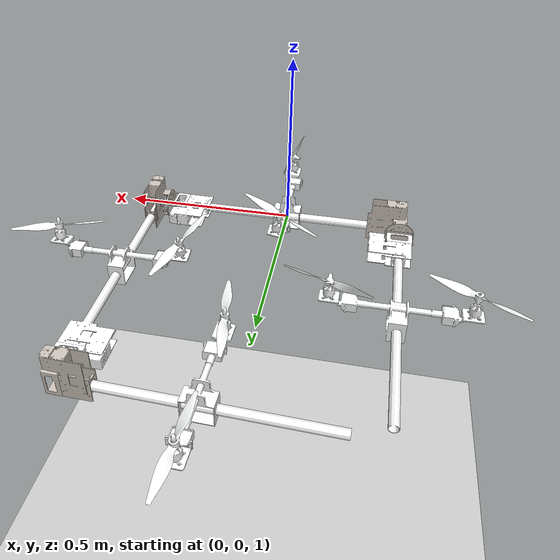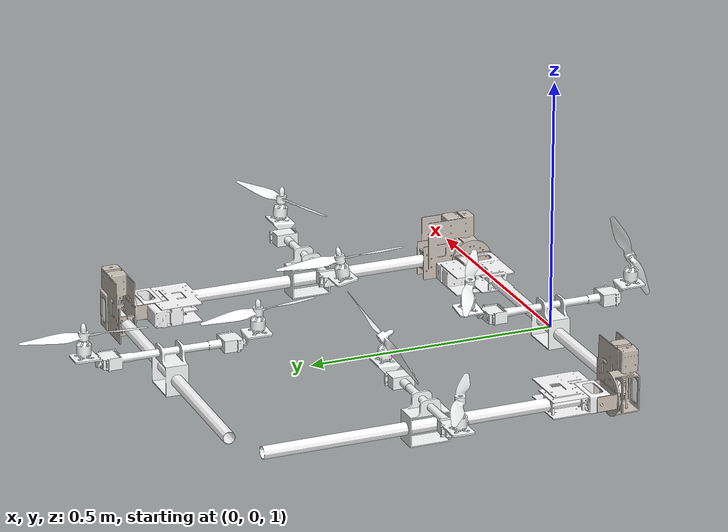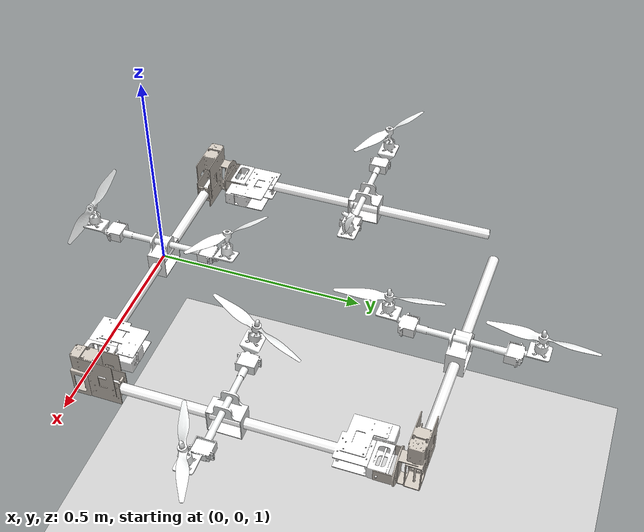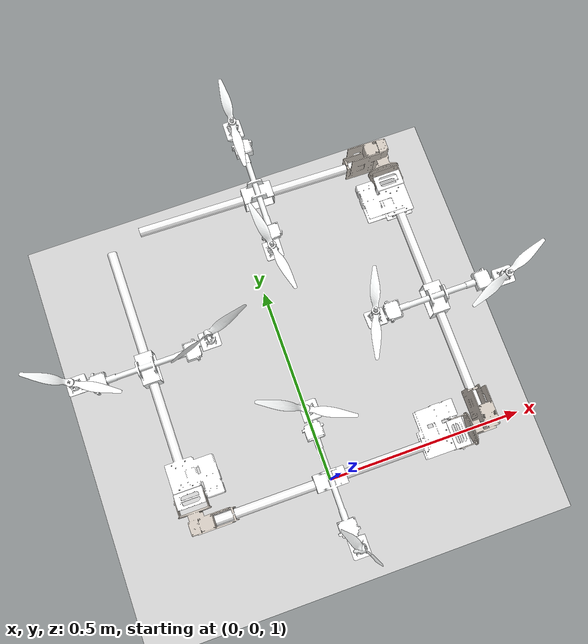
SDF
<?xml version="1.0" ?>
<sdf version="1.9">
  <world name="dragon_world">

    <plugin filename="gz-sim-physics-system"
            name="gz::sim::systems::Physics"/>
    <plugin filename="gz-sim-user-commands-system"
            name="gz::sim::systems::UserCommands"/>
    <plugin filename="gz-sim-scene-broadcaster-system"
            name="gz::sim::systems::SceneBroadcaster"/>
    <plugin filename="gz-sim-contact-system"
            name="gz::sim::systems::Contact"/>

    <light name="sun" type="directional">
      <cast_shadows>true</cast_shadows>
      <pose>0 0 10 0 0 0</pose>
      <diffuse>0.8 0.8 0.8 1</diffuse>
      <specular>0.2 0.2 0.2 1</specular>
      <direction>-0.5 0.1 -0.9</direction>
    </light>

    <model name="ground_plane">
      <static>true</static>
      <link name="link">
        <collision name="collision">
          <geometry>
            <plane><normal>0 0 1</normal><size>100 100</size></plane>
          </geometry>
        </collision>
        <visual name="visual">
          <geometry>
            <plane><normal>0 0 1</normal><size>100 100</size></plane>
          </geometry>
          <material>
            <ambient>0.8 0.8 0.8 1</ambient>
            <diffuse>0.8 0.8 0.8 1</diffuse>
          </material>
        </visual>
      </link>
    </model>

    <include>
      <uri>model://serial-articulated</uri>
      <pose>0 0 1 0 0 0</pose>
    </include>

  </world>
</sdf>

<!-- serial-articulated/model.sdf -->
<sdf version='1.11'>
  <model name='dragon'>
    <static>true</static>
    <link name='base_link'>
      <gravity>false</gravity>
      <inertial>
        <pose>0.094083375991619769 0.31392124549819073 0.02355789200391184 0 0 0</pose>
        <mass>3.2123976475049201</mass>
        <inertia>
          <ixx>0.28615501559474132</ixx>
          <ixy>-0.076412822410160119</ixy>
          <ixz>0.0014552482556793301</ixz>
          <iyy>0.29996932674844812</iyy>
          <iyz>-0.001932335490017784</iyz>
          <izz>0.58140284867119696</izz>
        </inertia>
      </inertial>
      <collision name='base_link_collision'>
        <pose>0 0 0 0 0 0</pose>
        <geometry>
          <mesh>
            <scale>1 1 1</scale>
            <uri>model://serial-articulated/meshes/base_link.STL</uri>
          </mesh>
        </geometry>
      </collision>
      <collision name='base_link_fixed_joint_lump__joint1_pitch_collision_1'>
        <pose>0.41105000000000003 0.751 -0.042411999999999998 0 0.0012441000000000002 3.1415853071795872</pose>
        <geometry>
          <mesh>
            <scale>1 1 1</scale>
            <uri>model://serial-articulated/meshes/joint1_pitch.STL</uri>
          </mesh>
        </geometry>
      </collision>
      <collision name='base_link_fixed_joint_lump__joint1_yaw_collision_2'>
        <pose>0.45349657127694659 0.67999968816815959 0.0001408413459373786 1.570844099999992 -4.5698332895582894e-09 -1.570800000002843</pose>
        <geometry>
          <mesh>
            <scale>1 1 1</scale>
            <uri>model://serial-articulated/meshes/joint1_yaw.STL</uri>
          </mesh>
        </geometry>
      </collision>
      <collision name='base_link_fixed_joint_lump__Joint2_pitch_collision_3'>
        <pose>0.41104910643746267 -1.561125325677537e-07 -0.042414183327252913 -3.141541207179595 -4.569833366160561e-09 -1.5708000000028433</pose>
        <geometry>
          <mesh>
            <scale>1 1 1</scale>
            <uri>model://serial-articulated/meshes/Joint2_pitch.STL</uri>
          </mesh>
        </geometry>
      </collision>
      <collision name='base_link_fixed_joint_lump__joint2_yaw_collision_4'>
        <pose>0.33999376847548579 -0.042499894917988217 -5.8386109438382516e-06 1.570792657970653 5.1446410214871967e-05 3.1415853071769742</pose>
        <geometry>
          <mesh>
            <scale>1 1 1</scale>
            <uri>model://serial-articulated/meshes/joint2_yaw.STL</uri>
          </mesh>
        </geometry>
      </collision>
      <collision name='base_link_fixed_joint_lump__joint3_pitch_collision_5'>
        <pose>-0.34000373191817418 5.2565502569601463e-06 -0.042540666188315653 7.3420293452184246e-06 -4.4100000008085954e-05 -7.3463858662453209e-06</pose>
        <geometry>
          <mesh>
            <scale>1 1 1</scale>
            <uri>model://serial-articulated/meshes/joint3_pitch.STL</uri>
          </mesh>
        </geometry>
      </collision>
      <collision name='base_link_fixed_joint_lump__joint3_yaw_collision_6'>
        <pose>-0.38250508455758409 0.071005256745348522 -4.2019196704767843e-05 1.5707558999730218 -7.3418673495855403e-06 1.570792653937914</pose>
        <geometry>
          <mesh>
            <scale>1 1 1</scale>
            <uri>model://serial-articulated/meshes/joint3_yaw.STL</uri>
          </mesh>
        </geometry>
      </collision>
      <collision name='base_link_fixed_joint_lump__link4_arm_roll_collision_7'>
        <pose>-0.44000565494703281 0.41100513756288598 0.044958152457951851 -1.570724063884311 -0.97708531051172465 -1.5708598965289029</pose>
        <geometry>
          <mesh>
            <scale>1 1 1</scale>
            <uri>model://serial-articulated/meshes/link4_arm_roll.STL</uri>
          </mesh>
        </geometry>
      </collision>
      <collision name='base_link_fixed_joint_lump__link3_arm_roll_collision_8'>
        <pose>-7.4993181363725006e-06 0.1000024377774794 0.044977192357190332 -1.5707933537916741 -0.57554855358541879 3.1415876877894982</pose>
        <geometry>
          <mesh>
            <scale>1 1 1</scale>
            <uri>model://serial-articulated/meshes/link3_arm_roll.STL</uri>
          </mesh>
        </geometry>
      </collision>
      <collision name='base_link_fixed_joint_lump__link2_arm_roll_collision_9'>
        <pose>0.52060298715257469 -0.34000055835008391 -0.003260047929155345 2.2087640015835199 0.87206879575160012 -1.0545058706842991</pose>
        <geometry>
          <mesh>
            <scale>1 1 1</scale>
            <uri>model://serial-articulated/meshes/link2_arm_roll.STL</uri>
          </mesh>
        </geometry>
      </collision>
      <collision name='base_link_fixed_joint_lump__link1_arm_roll_collision_10'>
        <pose>0.751 -0.65100000000000002 0.044999999999999998 -1.5707999999999995 -0.97713000000000028 -3.1415853071795872</pose>
        <geometry>
          <mesh>
            <scale>1 1 1</scale>
            <uri>model://serial-articulated/meshes/link1_arm_roll.STL</uri>
          </mesh>
        </geometry>
      </collision>
      <visual name='base_link_visual'>
        <pose>0 0 0 0 0 0</pose>
        <geometry>
          <mesh>
            <scale>1 1 1</scale>
            <uri>model://serial-articulated/meshes/base_link.STL</uri>
          </mesh>
        </geometry>
        <material>
          <diffuse>1 1 1 1</diffuse>
          <ambient>1 1 1 1</ambient>
        </material>
      </visual>
      <visual name='base_link_fixed_joint_lump__joint1_pitch_visual_1'>
        <pose>0.41105000000000003 0.751 -0.042411999999999998 0 0.0012441000000000002 3.1415853071795872</pose>
        <geometry>
          <mesh>
            <scale>1 1 1</scale>
            <uri>model://serial-articulated/meshes/joint1_pitch.STL</uri>
          </mesh>
        </geometry>
        <material>
          <diffuse>0.808823526 0.774509847 0.735294163 1</diffuse>
          <ambient>0.808823526 0.774509847 0.735294163 1</ambient>
        </material>
      </visual>
      <visual name='base_link_fixed_joint_lump__joint1_yaw_visual_2'>
        <pose>0.45349657127694659 0.67999968816815959 0.0001408413459373786 1.570844099999992 -4.5698332895582894e-09 -1.570800000002843</pose>
        <geometry>
          <mesh>
            <scale>1 1 1</scale>
            <uri>model://serial-articulated/meshes/joint1_yaw.STL</uri>
          </mesh>
        </geometry>
        <material>
          <diffuse>1 1 1 1</diffuse>
          <ambient>1 1 1 1</ambient>
        </material>
      </visual>
      <visual name='base_link_fixed_joint_lump__Joint2_pitch_visual_3'>
        <pose>0.41104910643746267 -1.561125325677537e-07 -0.042414183327252913 -3.141541207179595 -4.569833366160561e-09 -1.5708000000028433</pose>
        <geometry>
          <mesh>
            <scale>1 1 1</scale>
            <uri>model://serial-articulated/meshes/Joint2_pitch.STL</uri>
          </mesh>
        </geometry>
        <material>
          <diffuse>0.808823526 0.774509847 0.735294163 1</diffuse>
          <ambient>0.808823526 0.774509847 0.735294163 1</ambient>
        </material>
      </visual>
      <visual name='base_link_fixed_joint_lump__joint2_yaw_visual_4'>
        <pose>0.33999376847548579 -0.042499894917988217 -5.8386109438382516e-06 1.570792657970653 5.1446410214871967e-05 3.1415853071769742</pose>
        <geometry>
          <mesh>
            <scale>1 1 1</scale>
            <uri>model://serial-articulated/meshes/joint2_yaw.STL</uri>
          </mesh>
        </geometry>
        <material>
          <diffuse>1 1 1 1</diffuse>
          <ambient>1 1 1 1</ambient>
        </material>
      </visual>
      <visual name='base_link_fixed_joint_lump__joint3_pitch_visual_5'>
        <pose>-0.34000373191817418 5.2565502569601463e-06 -0.042540666188315653 7.3420293452184246e-06 -4.4100000008085954e-05 -7.3463858662453209e-06</pose>
        <geometry>
          <mesh>
            <scale>1 1 1</scale>
            <uri>model://serial-articulated/meshes/joint3_pitch.STL</uri>
          </mesh>
        </geometry>
        <material>
          <diffuse>0.808823526 0.774509847 0.735294163 1</diffuse>
          <ambient>0.808823526 0.774509847 0.735294163 1</ambient>
        </material>
      </visual>
      <visual name='base_link_fixed_joint_lump__joint3_yaw_visual_6'>
        <pose>-0.38250508455758409 0.071005256745348522 -4.2019196704767843e-05 1.5707558999730218 -7.3418673495855403e-06 1.570792653937914</pose>
        <geometry>
          <mesh>
            <scale>1 1 1</scale>
            <uri>model://serial-articulated/meshes/joint3_yaw.STL</uri>
          </mesh>
        </geometry>
        <material>
          <diffuse>1 1 1 1</diffuse>
          <ambient>1 1 1 1</ambient>
        </material>
      </visual>
      <visual name='base_link_fixed_joint_lump__link4_arm_roll_visual_7'>
        <pose>-0.44000565494703281 0.41100513756288598 0.044958152457951851 -1.570724063884311 -0.97708531051172465 -1.5708598965289029</pose>
        <geometry>
          <mesh>
            <scale>1 1 1</scale>
            <uri>model://serial-articulated/meshes/link4_arm_roll.STL</uri>
          </mesh>
        </geometry>
        <material>
          <diffuse>0.990196109 1 1 1</diffuse>
          <ambient>0.990196109 1 1 1</ambient>
        </material>
      </visual>
      <visual name='base_link_fixed_joint_lump__link3_arm_roll_visual_8'>
        <pose>-7.4993181363725006e-06 0.1000024377774794 0.044977192357190332 -1.5707933537916741 -0.57554855358541879 3.1415876877894982</pose>
        <geometry>
          <mesh>
            <scale>1 1 1</scale>
            <uri>model://serial-articulated/meshes/link3_arm_roll.STL</uri>
          </mesh>
        </geometry>
        <material>
          <diffuse>0.990196109 1 1 1</diffuse>
          <ambient>0.990196109 1 1 1</ambient>
        </material>
      </visual>
      <visual name='base_link_fixed_joint_lump__link2_arm_roll_visual_9'>
        <pose>0.52060298715257469 -0.34000055835008391 -0.003260047929155345 2.2087640015835199 0.87206879575160012 -1.0545058706842991</pose>
        <geometry>
          <mesh>
            <scale>1 1 1</scale>
            <uri>model://serial-articulated/meshes/link2_arm_roll.STL</uri>
          </mesh>
        </geometry>
        <material>
          <diffuse>0.990196109 1 1 1</diffuse>
          <ambient>0.990196109 1 1 1</ambient>
        </material>
      </visual>
      <visual name='base_link_fixed_joint_lump__link1_arm_roll_visual_10'>
        <pose>0.751 -0.65100000000000002 0.044999999999999998 -1.5707999999999995 -0.97713000000000028 -3.1415853071795872</pose>
        <geometry>
          <mesh>
            <scale>1 1 1</scale>
            <uri>model://serial-articulated/meshes/link1_arm_roll.STL</uri>
          </mesh>
        </geometry>
        <material>
          <diffuse>0.990196109 1 1 1</diffuse>
          <ambient>0.990196109 1 1 1</ambient>
        </material>
      </visual>
    </link>
    <joint name='link4_left_prop' type='revolute'>
      <pose relative_to='base_link'>-0.51330839277215479 0.41921974724216832 0.1134260191923436 0.020518361402719645 -3.7382211264238785e-05 -1.6182129218475649e-06</pose>
      <parent>base_link</parent>
      <child>link4_left_spin</child>
      <axis>
        <xyz>-0.16991000000000001 -0.020216999999999999 -0.98524999999999996</xyz>
        <limit>
          <lower>-inf</lower>
          <upper>inf</upper>
        </limit>
        <dynamics>
          <spring_reference>0</spring_reference>
          <spring_stiffness>0</spring_stiffness>
        </dynamics>
      </axis>
    </joint>
    <link name='link4_left_spin'>
      <gravity>false</gravity>
      <pose relative_to='link4_left_prop'>0 0 0 0 0 0</pose>
      <inertial>
        <pose>5.0936339579532596e-07 -2.54296163793022e-07 0.0043082663718138998 0 0 0</pose>
        <mass>0.0119145296235532</mass>
        <inertia>
          <ixx>4.7986214125918196e-06</ixx>
          <ixy>8.2875678609994599e-06</ixy>
          <ixz>-3.01248004075787e-12</ixz>
          <iyy>1.6077422263507501e-05</iyy>
          <iyz>3.6697308298421497e-12</iyz>
          <izz>2.05873107453045e-05</izz>
        </inertia>
      </inertial>
      <collision name='link4_left_spin_collision'>
        <pose>0 0 0 0 0 0</pose>
        <geometry>
          <mesh>
            <scale>1 1 1</scale>
            <uri>model://serial-articulated/meshes/link4_left_spin.STL</uri>
          </mesh>
        </geometry>
      </collision>
      <visual name='link4_left_spin_visual'>
        <pose>0 0 0 0 0 0</pose>
        <geometry>
          <mesh>
            <scale>1 1 1</scale>
            <uri>model://serial-articulated/meshes/link4_left_spin.STL</uri>
          </mesh>
        </geometry>
        <material>
          <diffuse>0.990196109 1 1 1</diffuse>
          <ambient>0.990196109 1 1 1</ambient>
        </material>
      </visual>
    </link>
    <joint name='link4_right_prop' type='revolute'>
      <pose relative_to='base_link'>-0.1667084152247883 0.41703619126012342 0.1137900761089965 2.0064889848413379 4.3471432481843853e-05 3.141586925495131</pose>
      <parent>base_link</parent>
      <child>link4_right_spin</child>
      <axis>
        <xyz>0 0 1</xyz>
        <limit>
          <lower>-inf</lower>
          <upper>inf</upper>
        </limit>
        <dynamics>
          <spring_reference>0</spring_reference>
          <spring_stiffness>0</spring_stiffness>
        </dynamics>
      </axis>
    </joint>
    <link name='link4_right_spin'>
      <gravity>false</gravity>
      <pose relative_to='link4_right_prop'>0 0 0 0 0 0</pose>
      <inertial>
        <pose>-5.1206361684208403e-07 2.5467935299561299e-07 0.0043082716485359097 0 0 0</pose>
        <mass>0.0119145517108038</mass>
        <inertia>
          <ixx>4.7924512653397898e-06</ixx>
          <ixy>8.2834104069104198e-06</ixy>
          <ixz>2.9489363863815699e-12</ixz>
          <iyy>1.6083761369675499e-05</iyy>
          <iyz>-3.6326338387179999e-12</iyz>
          <izz>2.0587479692032001e-05</izz>
        </inertia>
      </inertial>
      <collision name='link4_right_spin_collision'>
        <pose>0 0 0 0 0 0</pose>
        <geometry>
          <mesh>
            <scale>1 1 1</scale>
            <uri>model://serial-articulated/meshes/link4_right_spin.STL</uri>
          </mesh>
        </geometry>
      </collision>
      <visual name='link4_right_spin_visual'>
        <pose>0 0 0 0 0 0</pose>
        <geometry>
          <mesh>
            <scale>1 1 1</scale>
            <uri>model://serial-articulated/meshes/link4_right_spin.STL</uri>
          </mesh>
        </geometry>
        <material>
          <diffuse>0.990196109 1 1 1</diffuse>
          <ambient>0.990196109 1 1 1</ambient>
        </material>
      </visual>
    </link>
    <joint name='link3_left_prop' type='revolute'>
      <pose relative_to='base_link'>0.0049719485355487758 -0.1732974074060156 0.1137365291395516 1.2187522267817741 4.4933414887911241e-06 1.570789897756357</pose>
      <parent>base_link</parent>
      <child>link3_left_spin</child>
      <axis>
        <xyz>0 0 1</xyz>
        <limit>
          <lower>-inf</lower>
          <upper>inf</upper>
        </limit>
        <dynamics>
          <spring_reference>0</spring_reference>
          <spring_stiffness>0</spring_stiffness>
        </dynamics>
      </axis>
    </joint>
    <link name='link3_left_spin'>
      <gravity>false</gravity>
      <pose relative_to='link3_left_prop'>0 0 0 0 0 0</pose>
      <inertial>
        <pose>2.73046578846969e-07 5.7386769990522301e-07 0.0043082117476412598 0 0 0</pose>
        <mass>0.0119147088004385</mass>
        <inertia>
          <ixx>1.6263983374953499e-05</ixx>
          <ixy>-8.1584660418568499e-06</ixy>
          <ixz>-2.9217991626821201e-12</ixz>
          <iyy>4.6130560183606898e-06</iyy>
          <iyz>1.7470016448315399e-14</iyz>
          <izz>2.05883046094045e-05</izz>
        </inertia>
      </inertial>
      <collision name='link3_left_spin_collision'>
        <pose>0 0 0 0 0 0</pose>
        <geometry>
          <mesh>
            <scale>1 1 1</scale>
            <uri>model://serial-articulated/meshes/link3_left_spin.STL</uri>
          </mesh>
        </geometry>
      </collision>
      <visual name='link3_left_spin_visual'>
        <pose>0 0 0 0 0 0</pose>
        <geometry>
          <mesh>
            <scale>1 1 1</scale>
            <uri>model://serial-articulated/meshes/link3_left_spin.STL</uri>
          </mesh>
        </geometry>
        <material>
          <diffuse>0.990196109 1 1 1</diffuse>
          <ambient>0.990196109 1 1 1</ambient>
        </material>
      </visual>
    </link>
    <joint name='link3_right_prop' type='revolute'>
      <pose relative_to='base_link'>-0.0020576579648598492 0.17330261295149799 0.1124623350330531 0.17075511961306233 -4.9472677211839035e-07 -1.5707965929750671</pose>
      <parent>base_link</parent>
      <child>link3_right_spin</child>
      <axis>
        <xyz>0 0 1</xyz>
        <limit>
          <lower>-inf</lower>
          <upper>inf</upper>
        </limit>
        <dynamics>
          <spring_reference>0</spring_reference>
          <spring_stiffness>0</spring_stiffness>
        </dynamics>
      </axis>
    </joint>
    <link name='link3_right_spin'>
      <gravity>false</gravity>
      <pose relative_to='link3_right_prop'>0 0 0 0 0 0</pose>
      <inertial>
        <pose>-2.5617679511036302e-07 -5.6628507827741204e-07 0.0043082696237262503 0 0 0</pose>
        <mass>0.011914607071025299</mass>
        <inertia>
          <ixx>1.6501820132457999e-05</ixx>
          <ixy>-7.9825401941668902e-06</ixy>
          <ixz>3.5403624003570002e-12</ixz>
          <iyy>4.3744678562245803e-06</iyy>
          <iyz>5.6472291988431999e-13</iyz>
          <izz>2.0587553991969399e-05</izz>
        </inertia>
      </inertial>
      <collision name='link3_right_spin_collision'>
        <pose>0 0 0 0 0 0</pose>
        <geometry>
          <mesh>
            <scale>1 1 1</scale>
            <uri>model://serial-articulated/meshes/link3_right_spin.STL</uri>
          </mesh>
        </geometry>
      </collision>
      <visual name='link3_right_spin_visual'>
        <pose>0 0 0 0 0 0</pose>
        <geometry>
          <mesh>
            <scale>1 1 1</scale>
            <uri>model://serial-articulated/meshes/link3_right_spin.STL</uri>
          </mesh>
        </geometry>
        <material>
          <diffuse>0.990196109 1 1 1</diffuse>
          <ambient>0.990196109 1 1 1</ambient>
        </material>
      </visual>
    </link>
    <joint name='link2_left_prop' type='revolute'>
      <pose relative_to='base_link'>0.23834250895801509 0.34316174007101441 0.11378723595809059 2.9543414902628502 0.0057539083742912311 -5.6043909901602051e-06</pose>
      <parent>base_link</parent>
      <child>link2_left_spin</child>
      <axis>
        <xyz>0 0 1</xyz>
        <limit>
          <lower>-inf</lower>
          <upper>inf</upper>
        </limit>
        <dynamics>
          <spring_reference>0</spring_reference>
          <spring_stiffness>0</spring_stiffness>
        </dynamics>
      </axis>
    </joint>
    <link name='link2_left_spin'>
      <gravity>false</gravity>
      <pose relative_to='link2_left_prop'>0 0 0 0 0 0</pose>
      <inertial>
        <pose>1.75439487964946e-07 -5.4595662946077497e-07 0.0043082238273990398 0 0 0</pose>
        <mass>0.0119146770370482</mass>
        <inertia>
          <ixx>1.7897955188503798e-05</ixx>
          <ixy>6.6961122712129901e-06</ixy>
          <ixz>-2.9382143107992398e-13</ixz>
          <iyy>2.9782851323175499e-06</iyy>
          <iyz>7.1775198346959003e-12</iyz>
          <izz>2.0587501473632701e-05</izz>
        </inertia>
      </inertial>
      <collision name='link2_left_spin_collision'>
        <pose>0 0 0 0 0 0</pose>
        <geometry>
          <mesh>
            <scale>1 1 1</scale>
            <uri>model://serial-articulated/meshes/link2_left_spin.STL</uri>
          </mesh>
        </geometry>
      </collision>
      <visual name='link2_left_spin_visual'>
        <pose>0 0 0 0 0 0</pose>
        <geometry>
          <mesh>
            <scale>1 1 1</scale>
            <uri>model://serial-articulated/meshes/link2_left_spin.STL</uri>
          </mesh>
        </geometry>
        <material>
          <diffuse>0.990196109 1 1 1</diffuse>
          <ambient>0.990196109 1 1 1</ambient>
        </material>
      </visual>
    </link>
    <joint name='link2_right_prop' type='revolute'>
      <pose relative_to='base_link'>0.58494518876901802 0.32389280942058479 0.11227225760167719 3.0470002275566439 7.9405578916000359e-05 -3.080791835178275</pose>
      <parent>base_link</parent>
      <child>link2_right_spin</child>
      <axis>
        <xyz>0 0 1</xyz>
        <limit>
          <lower>-inf</lower>
          <upper>inf</upper>
        </limit>
        <dynamics>
          <spring_reference>0</spring_reference>
          <spring_stiffness>0</spring_stiffness>
        </dynamics>
      </axis>
    </joint>
    <link name='link2_right_spin'>
      <gravity>false</gravity>
      <pose relative_to='link2_right_prop'>0 0 0 0 0 0</pose>
      <inertial>
        <pose>-5.5534239007393204e-07 1.5379311291141599e-07 0.0043082113420697104 0 0 0</pose>
        <mass>0.0119145275478498</mass>
        <inertia>
          <ixx>2.4788926237237398e-06</ixx>
          <ixy>6.09419636431981e-06</ixy>
          <ixz>-2.6916859631944099e-13</ixz>
          <iyy>1.83970876472519e-05</iyy>
          <iyz>-9.8340209359989906e-13</iyz>
          <izz>2.0587245953127e-05</izz>
        </inertia>
      </inertial>
      <collision name='link2_right_spin_collision'>
        <pose>0 0 0 0 0 0</pose>
        <geometry>
          <mesh>
            <scale>1 1 1</scale>
            <uri>model://serial-articulated/meshes/link2_right_spin.STL</uri>
          </mesh>
        </geometry>
      </collision>
      <visual name='link2_right_spin_visual'>
        <pose>0 0 0 0 0 0</pose>
        <geometry>
          <mesh>
            <scale>1 1 1</scale>
            <uri>model://serial-articulated/meshes/link2_right_spin.STL</uri>
          </mesh>
        </geometry>
        <material>
          <diffuse>0.990196109 1 1 1</diffuse>
          <ambient>0.990196109 1 1 1</ambient>
        </material>
      </visual>
    </link>
    <joint name='link1_left_prop' type='revolute'>
      <pose relative_to='base_link'>0.054490834877236487 0.58599686395884754 0.11307280261578601 3.100134070008949 -3.1719221314626014e-05 1.5473043204294201</pose>
      <parent>base_link</parent>
      <child>link1_left_spin</child>
      <axis>
        <xyz>0 0.049088 -0.99878999999999996</xyz>
        <limit>
          <lower>-inf</lower>
          <upper>inf</upper>
        </limit>
        <dynamics>
          <spring_reference>0</spring_reference>
          <spring_stiffness>0</spring_stiffness>
        </dynamics>
      </axis>
    </joint>
    <link name='link1_left_spin'>
      <gravity>false</gravity>
      <pose relative_to='link1_left_prop'>0 0 0 0 0 0</pose>
      <inertial>
        <pose>-6.6576237556237295e-07 7.51971221471526e-08 0.0043082201008794296 0 0 0</pose>
        <mass>0.011914561956256399</mass>
        <inertia>
          <ixx>8.9256336721573604e-07</ixx>
          <ixy>3.06123858172512e-06</ixy>
          <ixz>5.6671762227492601e-12</ixz>
          <iyy>1.99835060436476e-05</iyy>
          <iyz>1.6706195567005999e-12</iyz>
          <izz>2.0587338830599999e-05</izz>
        </inertia>
      </inertial>
      <collision name='link1_left_spin_collision'>
        <pose>0 0 0 0 0 0</pose>
        <geometry>
          <mesh>
            <scale>1 1 1</scale>
            <uri>model://serial-articulated/meshes/link1_left_spin.STL</uri>
          </mesh>
        </geometry>
      </collision>
      <visual name='link1_left_spin_visual'>
        <pose>0 0 0 0 0 0</pose>
        <geometry>
          <mesh>
            <scale>1 1 1</scale>
            <uri>model://serial-articulated/meshes/link1_left_spin.STL</uri>
          </mesh>
        </geometry>
        <material>
          <diffuse>0.990196109 1 1 1</diffuse>
          <ambient>0.990196109 1 1 1</ambient>
        </material>
      </visual>
    </link>
    <joint name='link1_right_prop' type='revolute'>
      <pose relative_to='base_link'>0.066010589885560411 0.93249691248709943 0.113574215087704 3.1338385870735519 3.1421936024115987e-05 -1.5942883335337443</pose>
      <parent>base_link</parent>
      <child>link1_right_spin</child>
      <axis>
        <xyz>-0.18626999999999999 0.0062962000000000001 -0.98248000000000002</xyz>
        <limit>
          <lower>-inf</lower>
          <upper>inf</upper>
        </limit>
        <dynamics>
          <spring_reference>0</spring_reference>
          <spring_stiffness>0</spring_stiffness>
        </dynamics>
      </axis>
    </joint>
    <link name='link1_right_spin'>
      <gravity>false</gravity>
      <pose relative_to='link1_right_prop'>0 0 0 0 0 0</pose>
      <inertial>
        <pose>6.9315839235084595e-07 6.2994502919577795e-08 0.00430821663494839 0 0 0</pose>
        <mass>0.0119145513741783</mass>
        <inertia>
          <ixx>4.7611968447637199e-07</ixx>
          <ixy>-1.11645184011423e-06</ixy>
          <ixz>-5.1518207968535502e-12</ixz>
          <iyy>2.0399736262995001e-05</iyy>
          <iyz>-2.9852301022851101e-12</iyz>
          <izz>2.05871235175461e-05</izz>
        </inertia>
      </inertial>
      <collision name='link1_right_spin_collision'>
        <pose>0 0 0 0 0 0</pose>
        <geometry>
          <mesh>
            <scale>1 1 1</scale>
            <uri>model://serial-articulated/meshes/link1_right_spin.STL</uri>
          </mesh>
        </geometry>
      </collision>
      <visual name='link1_right_spin_visual'>
        <pose>0 0 0 0 0 0</pose>
        <geometry>
          <mesh>
            <scale>1 1 1</scale>
            <uri>model://serial-articulated/meshes/link1_right_spin.STL</uri>
          </mesh>
        </geometry>
        <material>
          <diffuse>0.990196109 1 1 1</diffuse>
          <ambient>0.990196109 1 1 1</ambient>
        </material>
      </visual>
    </link>
    <frame name='link4_cross_arm' attached_to='joint3_yaw'>
      <pose>0.34000000000000002 0.044999999999999998 -0.057500000000000002 0 0 2.1644999999999999</pose>
    </frame>
    <frame name='link4_arm_roll' attached_to='link4_cross_arm'>
      <pose>0 0 0 0 0 0</pose>
    </frame>
    <frame name='link4_main_tube' attached_to='joint3_pitch'>
      <pose>-0.042500000000000003 0.070999999999999994 0.042500000000000003 1.5708 -5.5511151231257827e-17 1.5708</pose>
    </frame>
    <frame name='joint3_yaw' attached_to='link4_main_tube'>
      <pose>0 0 0 0 0 0</pose>
    </frame>
    <frame name='Joint3_dummy' attached_to='joint2_yaw'>
      <pose>0.68000000000000005 -0.042500000000000003 0.042500000000000003 1.5708 -4.2351647362715017e-22 -3.1415853071795872</pose>
    </frame>
    <frame name='joint3_pitch' attached_to='Joint3_dummy'>
      <pose>0 0 0 0 0 0</pose>
    </frame>
    <frame name='link3_cross_arm' attached_to='joint2_yaw'>
      <pose>0.34000000000000002 0.044999999999999998 0.14249999999999999 -3.1415853071795872 -8.4703294725430034e-22 0.57560000000000033</pose>
    </frame>
    <frame name='link3_arm_roll' attached_to='link3_cross_arm'>
      <pose>0 0 0 0 0 0</pose>
    </frame>
    <frame name='link3_main_tube' attached_to='Joint2_pitch'>
      <pose>0.042500000000000003 0.071053000000000005 -0.042411999999999998 -1.5708 5.5511151231257827e-17 1.5708</pose>
    </frame>
    <frame name='joint2_yaw' attached_to='link3_main_tube'>
      <pose>0 0 0 0 0 0</pose>
    </frame>
    <frame name='joint2_dummy' attached_to='joint1_yaw'>
      <pose>0.68000000000000005 -0.042553000000000001 0.042446999999999999 1.5708 0 0</pose>
    </frame>
    <frame name='Joint2_pitch' attached_to='joint2_dummy'>
      <pose>0 0 0 0 0 0</pose>
    </frame>
    <frame name='link2_cross_arm' attached_to='joint1_yaw'>
      <pose>1.02 -0.0034041000000000002 -0.067110000000000003 0.22793999999999984 0.32310000000000022 -0.93982999999999994</pose>
    </frame>
    <frame name='link2_arm_roll' attached_to='link2_cross_arm'>
      <pose>0 0 0 0 0 0</pose>
    </frame>
    <frame name='link2_main_tube' attached_to='joint1_pitch'>
      <pose>-0.042500000000000003 0.070999999999999994 0.042500000000000003 1.5696000000000001 -5.5511151231257827e-17 1.5708</pose>
    </frame>
    <frame name='joint1_yaw' attached_to='link2_main_tube'>
      <pose>0 0 0 0 0 0</pose>
    </frame>
    <frame name='joint1_dummy' attached_to='base_link'>
      <pose>0.41105000000000003 0.751 -0.042411999999999998 0 0.0012441000000000002 3.1415853071795872</pose>
    </frame>
    <frame name='joint1_pitch' attached_to='joint1_dummy'>
      <pose>0 0 0 0 0 0</pose>
    </frame>
    <frame name='link1_cross_arm' attached_to='base_link'>
      <pose>0.751 -0.65100000000000002 0.044999999999999998 -1.5707999999999993 -0.97713000000000028 -3.1415853071795872</pose>
    </frame>
    <frame name='link1_arm_roll' attached_to='link1_cross_arm'>
      <pose>0 0 0 0 0 0</pose>
    </frame>

  </model>
</sdf>
